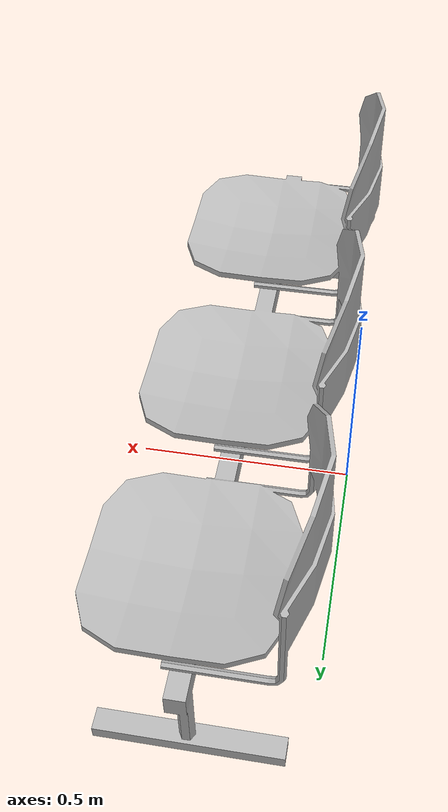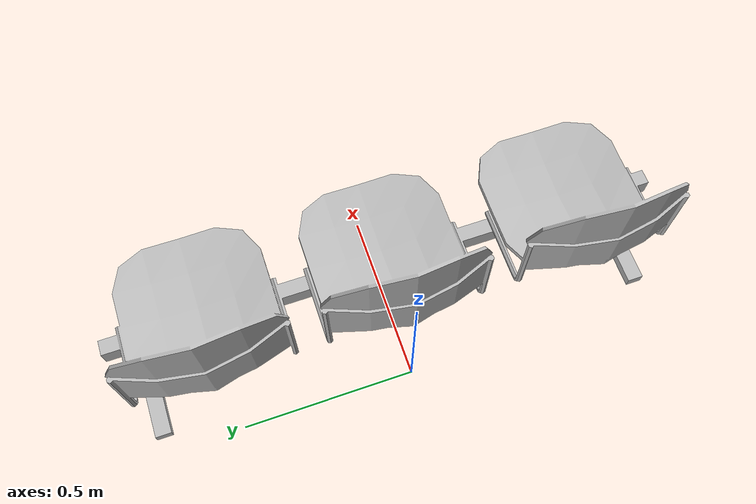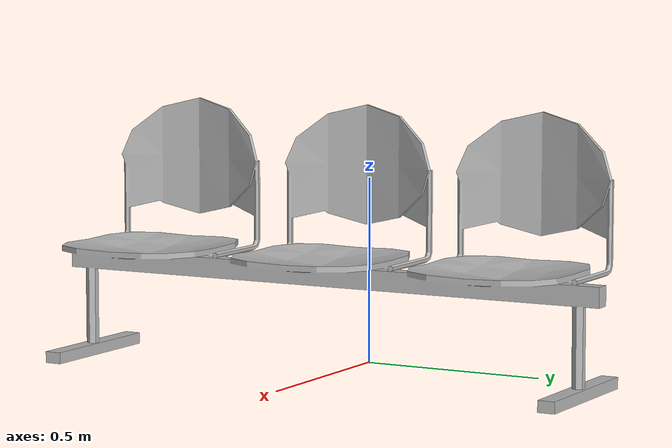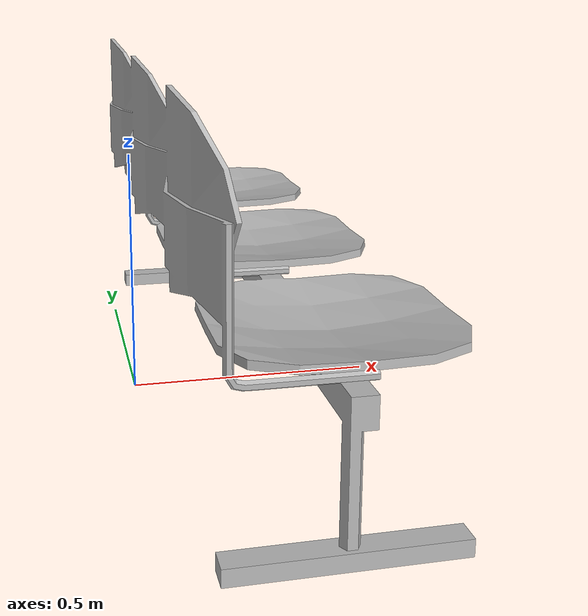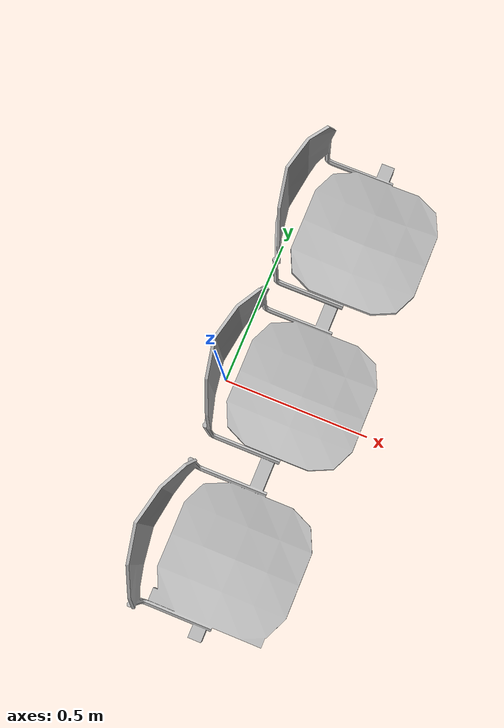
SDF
<?xml version="1.0" ?>
<sdf version="1.5">
  <model name="PotatoChipChair">
   <static>true</static>
    <link name="link">
      <pose>0 0 0 0 0 0</pose>

        <visual name="visual">
          <geometry>
            <mesh><uri>model://PotatoChipChair/meshes/PotatoChipChair.obj</uri></mesh>
          </geometry>
        </visual>

        <collision name="collision">
          <geometry>
            <mesh><uri>model://PotatoChipChair/meshes/PotatoChipChair.obj</uri></mesh>
          </geometry>
        </collision>

    </link>
  </model>
</sdf>
